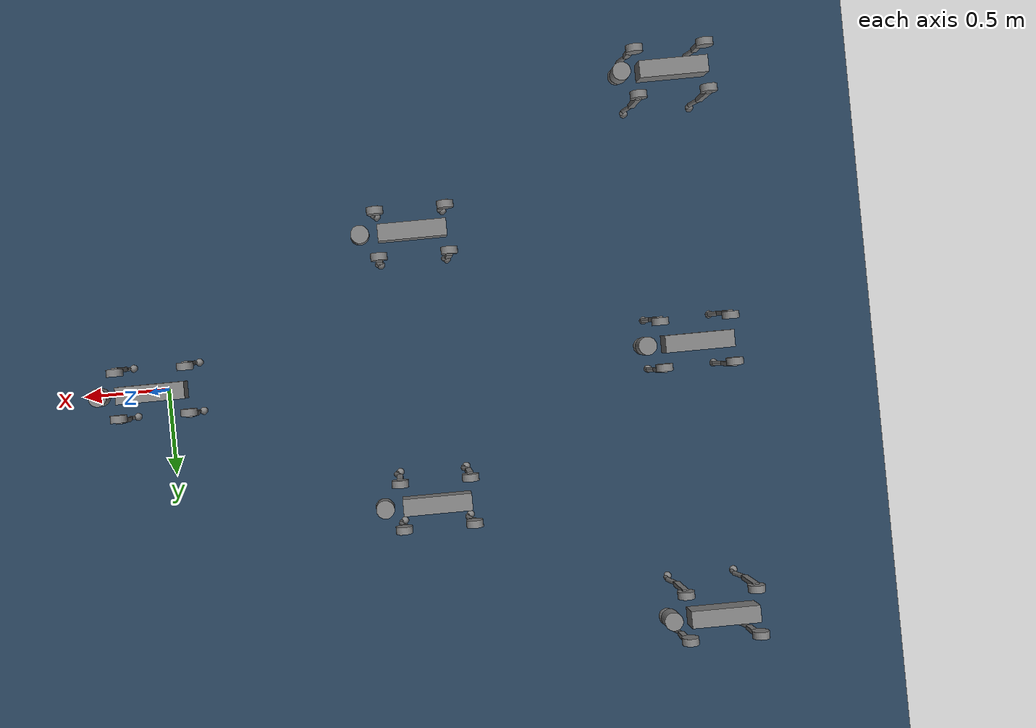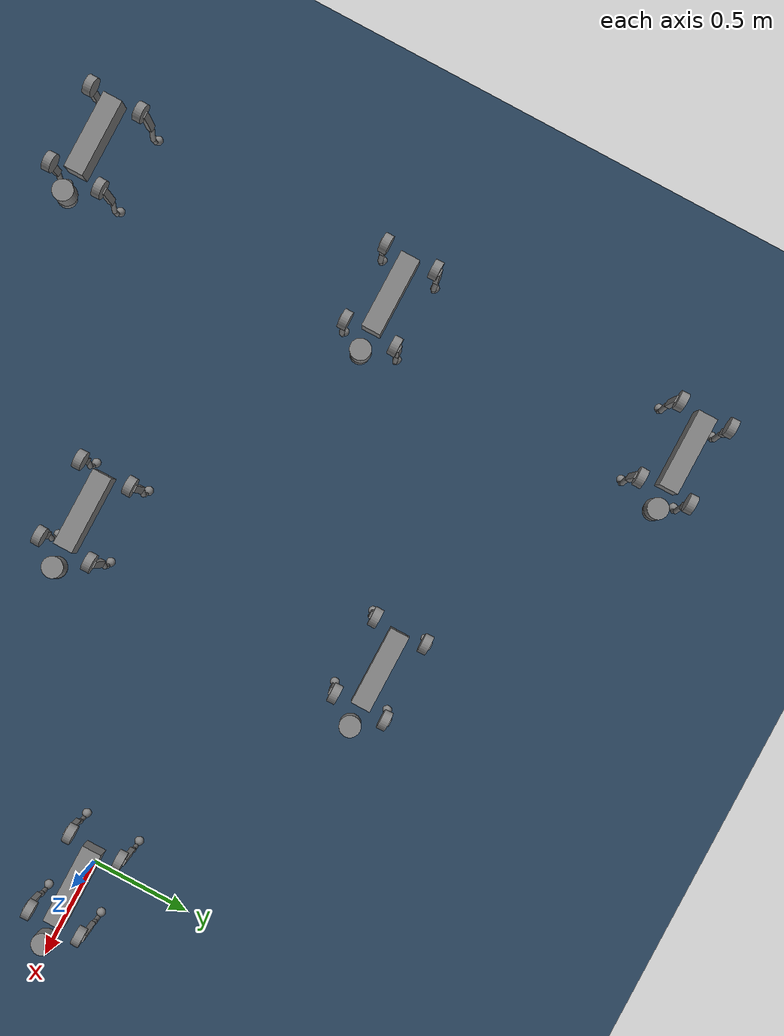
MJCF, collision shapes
<mujoco model="go2 scene">

  <compiler angle="radian" meshdir="assets" autolimits="true" />
  <option cone="elliptic" impratio="100" />
  <default>
    <default class="go2">
      <geom friction="0.4" margin="0.001" condim="1"/>
      <joint axis="0 1 0" damping="0.1" armature="0.01" frictionloss="0.2"/>
      <motor ctrlrange="-23.7 23.7"/>
      <default class="abduction"><joint axis="1 0 0" range="-1.0472 1.0472"/></default>
      <default class="hip">
        <default class="front_hip"><joint range="-1.5708 3.4907"/></default>
        <default class="back_hip"><joint range="-0.5236 4.5379"/></default>
      </default>
      <default class="knee"><joint range="-2.7227 -0.83776"/><motor ctrlrange="-45.43 45.43"/></default>
      <default class="visual"><geom type="mesh" contype="0" conaffinity="0" group="2"/></default>
      <default class="collision"><geom group="3"/>
        <default class="foot"><geom size="0.022" pos="-0.002 0 -0.213" priority="1" condim="6" friction="0.4 0.02 0.01"/></default>
      </default>
    </default>
  </default>

  <asset>
    <material name="metal" rgba=".9 .95 .95 1" />
    <material name="black" rgba="0 0 0 1" />
    <material name="white" rgba="1 1 1 1" />
    <material name="gray" rgba="0.671705 0.692426 0.774270 1" />

    <material name="mat_leader"   rgba="0.9 0.1 0.1 1.0"   shininess="0.8" reflectance="0.3"/>
    <material name="mat_obstacle" rgba="0.2 0.3 0.4 1.0"      shininess="0.1"/>

    <mesh file="base_0.obj" /><mesh file="base_1.obj" /><mesh file="base_2.obj" /><mesh file="base_3.obj" /><mesh file="base_4.obj" />
    <mesh file="hip_0.obj" /><mesh file="hip_1.obj" />
    <mesh file="thigh_0.obj" /><mesh file="thigh_1.obj" /><mesh file="thigh_mirror_0.obj" /><mesh file="thigh_mirror_1.obj" />
    <mesh file="calf_0.obj" /><mesh file="calf_1.obj" /><mesh file="calf_mirror_0.obj" /><mesh file="calf_mirror_1.obj" />
    <mesh file="foot.obj" />
    <texture type="skybox" builtin="gradient" rgb1="0.3 0.5 0.7" rgb2="0 0 0" width="512" height="3072"/>
    <texture type="2d" name="groundplane" builtin="checker" rgb1="0.2 0.3 0.4" rgb2="0.1 0.2 0.3" width="300" height="300"/>
    <material name="groundplane" texture="groundplane" texrepeat="5 5" reflectance="0.2"/>
  </asset>

  <statistic center="0 0 0.1" extent="0.8"/>
  <visual>
    <headlight diffuse="0.6 0.6 0.6" ambient="0.3 0.3 0.3" specular="0 0 0"/>
    <global azimuth="-130" elevation="-20"/>
  </visual>

  <worldbody>
    <light pos="0 0 1.5" dir="0 0 -1" directional="true"/>
    <geom name="floor" size="0 0 0.05" type="plane" material="groundplane"/>

    <body name="go2_0" pos="-3.0000 1.5000 0.4450" euler="0 0 0.0000" childclass="go2">
      <freejoint name="root_0"/>
      <inertial pos="0.021112 0 -0.005366" quat="-0.000543471 0.713435 -0.00173769 0.700719" mass="6.921" diaginertia="0.107027 0.0980771 0.0244531" />

      <geom mesh="base_0" material="black" class="visual" />
      <geom mesh="base_1" material="black" class="visual" />
      <geom mesh="base_2" material="black" class="visual" />
      <geom mesh="base_3" material="white" class="visual" />
      <geom mesh="base_4" material="gray" class="visual" />
      <geom size="0.1881 0.04675 0.057" type="box" class="collision" />
      <geom size="0.05 0.045" pos="0.285 0 0.01" type="cylinder" class="collision" />
      <geom size="0.047" pos="0.293 0 -0.06" class="collision" />
      <site name="imu_0" pos="-0.02557 0 0.04232" />

      <body name="FL_hip_0" pos="0.1934 0.0465 0">
        <joint name="FL_hip_joint_0" class="abduction" />
        <geom mesh="hip_0" material="metal" class="visual" />
        <geom mesh="hip_1" material="gray" class="visual" />
        <geom size="0.046 0.02" pos="0 0.08 0" quat="1 1 0 0" type="cylinder" class="collision" />
        <body name="FL_thigh_0" pos="0 0.0955 0">
          <joint name="FL_thigh_joint_0" class="front_hip" />
          <geom mesh="thigh_0" material="metal" class="visual" />
          <geom mesh="thigh_1" material="gray" class="visual" />
          <geom size="0.1065 0.01225 0.017" pos="0 0 -0.1065" quat="0.707107 0 0.707107 0" type="box" class="collision" />
          <body name="FL_calf_0" pos="0 0 -0.213">
            <joint name="FL_calf_joint_0" class="knee" />
            <geom mesh="calf_0" material="gray" class="visual" />
            <geom mesh="calf_1" material="black" class="visual" />
            <geom size="0.012 0.06" pos="0.008 0 -0.06" quat="0.994493 0 -0.104807 0" type="cylinder" class="collision" />
            <geom size="0.011 0.0325" pos="0.02 0 -0.148" quat="0.999688 0 0.0249974 0" type="cylinder" class="collision" />
            <geom pos="0 0 -0.213" mesh="foot" class="visual" material="black" />
            <geom name="FL_0" class="foot" />
          </body>
        </body>
      </body>

      <body name="FR_hip_0" pos="0.1934 -0.0465 0">
        <joint name="FR_hip_joint_0" class="abduction" />
        <geom mesh="hip_0" material="metal" class="visual" quat="4.63268e-05 1 0 0" />
        <geom mesh="hip_1" material="gray" class="visual" quat="4.63268e-05 1 0 0" />
        <geom size="0.046 0.02" pos="0 -0.08 0" quat="0.707107 0.707107 0 0" type="cylinder" class="collision" />
        <body name="FR_thigh_0" pos="0 -0.0955 0">
          <joint name="FR_thigh_joint_0" class="front_hip" />
          <geom mesh="thigh_mirror_0" material="metal" class="visual" />
          <geom mesh="thigh_mirror_1" material="gray" class="visual" />
          <geom size="0.1065 0.01225 0.017" pos="0 0 -0.1065" quat="0.707107 0 0.707107 0" type="box" class="collision" />
          <body name="FR_calf_0" pos="0 0 -0.213">
            <joint name="FR_calf_joint_0" class="knee" />
            <geom mesh="calf_mirror_0" material="gray" class="visual" />
            <geom mesh="calf_mirror_1" material="black" class="visual" />
            <geom size="0.013 0.06" pos="0.01 0 -0.06" quat="0.995004 0 -0.0998334 0" type="cylinder" class="collision" />
            <geom size="0.011 0.0325" pos="0.02 0 -0.148" quat="0.999688 0 0.0249974 0" type="cylinder" class="collision" />
            <geom pos="0 0 -0.213" mesh="foot" class="visual" material="black" />
            <geom name="FR_0" class="foot" />
          </body>
        </body>
      </body>

      <body name="RL_hip_0" pos="-0.1934 0.0465 0">
        <joint name="RL_hip_joint_0" class="abduction" />
        <geom mesh="hip_0" material="metal" class="visual" quat="4.63268e-05 0 1 0" />
        <geom mesh="hip_1" material="gray" class="visual" quat="4.63268e-05 0 1 0" />
        <geom size="0.046 0.02" pos="0 0.08 0" quat="0.707107 0.707107 0 0" type="cylinder" class="collision" />
        <body name="RL_thigh_0" pos="0 0.0955 0">
          <joint name="RL_thigh_joint_0" class="back_hip" />
          <geom mesh="thigh_0" material="metal" class="visual" />
          <geom mesh="thigh_1" material="gray" class="visual" />
          <geom size="0.1065 0.01225 0.017" pos="0 0 -0.1065" quat="0.707107 0 0.707107 0" type="box" class="collision" />
          <body name="RL_calf_0" pos="0 0 -0.213">
            <joint name="RL_calf_joint_0" class="knee" />
            <geom mesh="calf_0" material="gray" class="visual" />
            <geom mesh="calf_1" material="black" class="visual" />
            <geom size="0.013 0.06" pos="0.01 0 -0.06" quat="0.995004 0 -0.0998334 0" type="cylinder" class="collision" />
            <geom size="0.011 0.0325" pos="0.02 0 -0.148" quat="0.999688 0 0.0249974 0" type="cylinder" class="collision" />
            <geom pos="0 0 -0.213" mesh="foot" class="visual" material="black" />
            <geom name="RL_0" class="foot" />
          </body>
        </body>
      </body>

      <body name="RR_hip_0" pos="-0.1934 -0.0465 0">
        <joint name="RR_hip_joint_0" class="abduction" />
        <geom mesh="hip_0" material="metal" class="visual" quat="2.14617e-09 4.63268e-05 4.63268e-05 -1" />
        <geom mesh="hip_1" material="gray" class="visual" quat="2.14617e-09 4.63268e-05 4.63268e-05 -1" />
        <geom size="0.046 0.02" pos="0 -0.08 0" quat="0.707107 0.707107 0 0" type="cylinder" class="collision" />
        <body name="RR_thigh_0" pos="0 -0.0955 0">
          <joint name="RR_thigh_joint_0" class="back_hip" />
          <geom mesh="thigh_mirror_0" material="metal" class="visual" />
          <geom mesh="thigh_mirror_1" material="gray" class="visual" />
          <geom size="0.1065 0.01225 0.017" pos="0 0 -0.1065" quat="0.707107 0 0.707107 0" type="box" class="collision" />
          <body name="RR_calf_0" pos="0 0 -0.213">
            <joint name="RR_calf_joint_0" class="knee" />
            <geom mesh="calf_mirror_0" material="gray" class="visual" />
            <geom mesh="calf_mirror_1" material="black" class="visual" />
            <geom size="0.013 0.06" pos="0.01 0 -0.06" quat="0.995004 0 -0.0998334 0" type="cylinder" class="collision" />
            <geom size="0.011 0.0325" pos="0.02 0 -0.148" quat="0.999688 0 0.0249974 0" type="cylinder" class="collision" />
            <geom pos="0 0 -0.213" mesh="foot" class="visual" material="black" />
            <geom name="RR_0" class="foot" />
          </body>
        </body>
      </body>
    </body>

    <body name="go2_1" pos="-3.0000 0.0000 0.4450" euler="0 0 0.0000" childclass="go2">
      <freejoint name="root_1"/>
      <inertial pos="0.021112 0 -0.005366" quat="-0.000543471 0.713435 -0.00173769 0.700719" mass="6.921" diaginertia="0.107027 0.0980771 0.0244531" />

      <geom mesh="base_0" material="black" class="visual" />
      <geom mesh="base_1" material="black" class="visual" />
      <geom mesh="base_2" material="black" class="visual" />
      <geom mesh="base_3" material="white" class="visual" />
      <geom mesh="base_4" material="gray" class="visual" />
      <geom size="0.1881 0.04675 0.057" type="box" class="collision" />
      <geom size="0.05 0.045" pos="0.285 0 0.01" type="cylinder" class="collision" />
      <geom size="0.047" pos="0.293 0 -0.06" class="collision" />
      <site name="imu_1" pos="-0.02557 0 0.04232" />

      <body name="FL_hip_1" pos="0.1934 0.0465 0">
        <joint name="FL_hip_joint_1" class="abduction" />
        <geom mesh="hip_0" material="metal" class="visual" />
        <geom mesh="hip_1" material="gray" class="visual" />
        <geom size="0.046 0.02" pos="0 0.08 0" quat="1 1 0 0" type="cylinder" class="collision" />
        <body name="FL_thigh_1" pos="0 0.0955 0">
          <joint name="FL_thigh_joint_1" class="front_hip" />
          <geom mesh="thigh_0" material="metal" class="visual" />
          <geom mesh="thigh_1" material="gray" class="visual" />
          <geom size="0.1065 0.01225 0.017" pos="0 0 -0.1065" quat="0.707107 0 0.707107 0" type="box" class="collision" />
          <body name="FL_calf_1" pos="0 0 -0.213">
            <joint name="FL_calf_joint_1" class="knee" />
            <geom mesh="calf_0" material="gray" class="visual" />
            <geom mesh="calf_1" material="black" class="visual" />
            <geom size="0.012 0.06" pos="0.008 0 -0.06" quat="0.994493 0 -0.104807 0" type="cylinder" class="collision" />
            <geom size="0.011 0.0325" pos="0.02 0 -0.148" quat="0.999688 0 0.0249974 0" type="cylinder" class="collision" />
            <geom pos="0 0 -0.213" mesh="foot" class="visual" material="black" />
            <geom name="FL_1" class="foot" />
          </body>
        </body>
      </body>

      <body name="FR_hip_1" pos="0.1934 -0.0465 0">
        <joint name="FR_hip_joint_1" class="abduction" />
        <geom mesh="hip_0" material="metal" class="visual" quat="4.63268e-05 1 0 0" />
        <geom mesh="hip_1" material="gray" class="visual" quat="4.63268e-05 1 0 0" />
        <geom size="0.046 0.02" pos="0 -0.08 0" quat="0.707107 0.707107 0 0" type="cylinder" class="collision" />
        <body name="FR_thigh_1" pos="0 -0.0955 0">
          <joint name="FR_thigh_joint_1" class="front_hip" />
          <geom mesh="thigh_mirror_0" material="metal" class="visual" />
          <geom mesh="thigh_mirror_1" material="gray" class="visual" />
          <geom size="0.1065 0.01225 0.017" pos="0 0 -0.1065" quat="0.707107 0 0.707107 0" type="box" class="collision" />
          <body name="FR_calf_1" pos="0 0 -0.213">
            <joint name="FR_calf_joint_1" class="knee" />
            <geom mesh="calf_mirror_0" material="gray" class="visual" />
            <geom mesh="calf_mirror_1" material="black" class="visual" />
            <geom size="0.013 0.06" pos="0.01 0 -0.06" quat="0.995004 0 -0.0998334 0" type="cylinder" class="collision" />
            <geom size="0.011 0.0325" pos="0.02 0 -0.148" quat="0.999688 0 0.0249974 0" type="cylinder" class="collision" />
            <geom pos="0 0 -0.213" mesh="foot" class="visual" material="black" />
            <geom name="FR_1" class="foot" />
          </body>
        </body>
      </body>

      <body name="RL_hip_1" pos="-0.1934 0.0465 0">
        <joint name="RL_hip_joint_1" class="abduction" />
        <geom mesh="hip_0" material="metal" class="visual" quat="4.63268e-05 0 1 0" />
        <geom mesh="hip_1" material="gray" class="visual" quat="4.63268e-05 0 1 0" />
        <geom size="0.046 0.02" pos="0 0.08 0" quat="0.707107 0.707107 0 0" type="cylinder" class="collision" />
        <body name="RL_thigh_1" pos="0 0.0955 0">
          <joint name="RL_thigh_joint_1" class="back_hip" />
          <geom mesh="thigh_0" material="metal" class="visual" />
          <geom mesh="thigh_1" material="gray" class="visual" />
          <geom size="0.1065 0.01225 0.017" pos="0 0 -0.1065" quat="0.707107 0 0.707107 0" type="box" class="collision" />
          <body name="RL_calf_1" pos="0 0 -0.213">
            <joint name="RL_calf_joint_1" class="knee" />
            <geom mesh="calf_0" material="gray" class="visual" />
            <geom mesh="calf_1" material="black" class="visual" />
            <geom size="0.013 0.06" pos="0.01 0 -0.06" quat="0.995004 0 -0.0998334 0" type="cylinder" class="collision" />
            <geom size="0.011 0.0325" pos="0.02 0 -0.148" quat="0.999688 0 0.0249974 0" type="cylinder" class="collision" />
            <geom pos="0 0 -0.213" mesh="foot" class="visual" material="black" />
            <geom name="RL_1" class="foot" />
          </body>
        </body>
      </body>

      <body name="RR_hip_1" pos="-0.1934 -0.0465 0">
        <joint name="RR_hip_joint_1" class="abduction" />
        <geom mesh="hip_0" material="metal" class="visual" quat="2.14617e-09 4.63268e-05 4.63268e-05 -1" />
        <geom mesh="hip_1" material="gray" class="visual" quat="2.14617e-09 4.63268e-05 4.63268e-05 -1" />
        <geom size="0.046 0.02" pos="0 -0.08 0" quat="0.707107 0.707107 0 0" type="cylinder" class="collision" />
        <body name="RR_thigh_1" pos="0 -0.0955 0">
          <joint name="RR_thigh_joint_1" class="back_hip" />
          <geom mesh="thigh_mirror_0" material="metal" class="visual" />
          <geom mesh="thigh_mirror_1" material="gray" class="visual" />
          <geom size="0.1065 0.01225 0.017" pos="0 0 -0.1065" quat="0.707107 0 0.707107 0" type="box" class="collision" />
          <body name="RR_calf_1" pos="0 0 -0.213">
            <joint name="RR_calf_joint_1" class="knee" />
            <geom mesh="calf_mirror_0" material="gray" class="visual" />
            <geom mesh="calf_mirror_1" material="black" class="visual" />
            <geom size="0.013 0.06" pos="0.01 0 -0.06" quat="0.995004 0 -0.0998334 0" type="cylinder" class="collision" />
            <geom size="0.011 0.0325" pos="0.02 0 -0.148" quat="0.999688 0 0.0249974 0" type="cylinder" class="collision" />
            <geom pos="0 0 -0.213" mesh="foot" class="visual" material="black" />
            <geom name="RR_1" class="foot" />
          </body>
        </body>
      </body>
    </body>

    <body name="go2_2" pos="-3.0000 -1.5000 0.4450" euler="0 0 0.0000" childclass="go2">
      <freejoint name="root_2"/>
      <inertial pos="0.021112 0 -0.005366" quat="-0.000543471 0.713435 -0.00173769 0.700719" mass="6.921" diaginertia="0.107027 0.0980771 0.0244531" />

      <geom mesh="base_0" material="black" class="visual" />
      <geom mesh="base_1" material="black" class="visual" />
      <geom mesh="base_2" material="black" class="visual" />
      <geom mesh="base_3" material="white" class="visual" />
      <geom mesh="base_4" material="gray" class="visual" />
      <geom size="0.1881 0.04675 0.057" type="box" class="collision" />
      <geom size="0.05 0.045" pos="0.285 0 0.01" type="cylinder" class="collision" />
      <geom size="0.047" pos="0.293 0 -0.06" class="collision" />
      <site name="imu_2" pos="-0.02557 0 0.04232" />

      <body name="FL_hip_2" pos="0.1934 0.0465 0">
        <joint name="FL_hip_joint_2" class="abduction" />
        <geom mesh="hip_0" material="metal" class="visual" />
        <geom mesh="hip_1" material="gray" class="visual" />
        <geom size="0.046 0.02" pos="0 0.08 0" quat="1 1 0 0" type="cylinder" class="collision" />
        <body name="FL_thigh_2" pos="0 0.0955 0">
          <joint name="FL_thigh_joint_2" class="front_hip" />
          <geom mesh="thigh_0" material="metal" class="visual" />
          <geom mesh="thigh_1" material="gray" class="visual" />
          <geom size="0.1065 0.01225 0.017" pos="0 0 -0.1065" quat="0.707107 0 0.707107 0" type="box" class="collision" />
          <body name="FL_calf_2" pos="0 0 -0.213">
            <joint name="FL_calf_joint_2" class="knee" />
            <geom mesh="calf_0" material="gray" class="visual" />
            <geom mesh="calf_1" material="black" class="visual" />
            <geom size="0.012 0.06" pos="0.008 0 -0.06" quat="0.994493 0 -0.104807 0" type="cylinder" class="collision" />
            <geom size="0.011 0.0325" pos="0.02 0 -0.148" quat="0.999688 0 0.0249974 0" type="cylinder" class="collision" />
            <geom pos="0 0 -0.213" mesh="foot" class="visual" material="black" />
            <geom name="FL_2" class="foot" />
          </body>
        </body>
      </body>

      <body name="FR_hip_2" pos="0.1934 -0.0465 0">
        <joint name="FR_hip_joint_2" class="abduction" />
        <geom mesh="hip_0" material="metal" class="visual" quat="4.63268e-05 1 0 0" />
        <geom mesh="hip_1" material="gray" class="visual" quat="4.63268e-05 1 0 0" />
        <geom size="0.046 0.02" pos="0 -0.08 0" quat="0.707107 0.707107 0 0" type="cylinder" class="collision" />
        <body name="FR_thigh_2" pos="0 -0.0955 0">
          <joint name="FR_thigh_joint_2" class="front_hip" />
          <geom mesh="thigh_mirror_0" material="metal" class="visual" />
          <geom mesh="thigh_mirror_1" material="gray" class="visual" />
          <geom size="0.1065 0.01225 0.017" pos="0 0 -0.1065" quat="0.707107 0 0.707107 0" type="box" class="collision" />
          <body name="FR_calf_2" pos="0 0 -0.213">
            <joint name="FR_calf_joint_2" class="knee" />
            <geom mesh="calf_mirror_0" material="gray" class="visual" />
            <geom mesh="calf_mirror_1" material="black" class="visual" />
            <geom size="0.013 0.06" pos="0.01 0 -0.06" quat="0.995004 0 -0.0998334 0" type="cylinder" class="collision" />
            <geom size="0.011 0.0325" pos="0.02 0 -0.148" quat="0.999688 0 0.0249974 0" type="cylinder" class="collision" />
            <geom pos="0 0 -0.213" mesh="foot" class="visual" material="black" />
            <geom name="FR_2" class="foot" />
          </body>
        </body>
      </body>

      <body name="RL_hip_2" pos="-0.1934 0.0465 0">
        <joint name="RL_hip_joint_2" class="abduction" />
        <geom mesh="hip_0" material="metal" class="visual" quat="4.63268e-05 0 1 0" />
        <geom mesh="hip_1" material="gray" class="visual" quat="4.63268e-05 0 1 0" />
        <geom size="0.046 0.02" pos="0 0.08 0" quat="0.707107 0.707107 0 0" type="cylinder" class="collision" />
        <body name="RL_thigh_2" pos="0 0.0955 0">
          <joint name="RL_thigh_joint_2" class="back_hip" />
          <geom mesh="thigh_0" material="metal" class="visual" />
          <geom mesh="thigh_1" material="gray" class="visual" />
          <geom size="0.1065 0.01225 0.017" pos="0 0 -0.1065" quat="0.707107 0 0.707107 0" type="box" class="collision" />
          <body name="RL_calf_2" pos="0 0 -0.213">
            <joint name="RL_calf_joint_2" class="knee" />
            <geom mesh="calf_0" material="gray" class="visual" />
            <geom mesh="calf_1" material="black" class="visual" />
            <geom size="0.013 0.06" pos="0.01 0 -0.06" quat="0.995004 0 -0.0998334 0" type="cylinder" class="collision" />
            <geom size="0.011 0.0325" pos="0.02 0 -0.148" quat="0.999688 0 0.0249974 0" type="cylinder" class="collision" />
            <geom pos="0 0 -0.213" mesh="foot" class="visual" material="black" />
            <geom name="RL_2" class="foot" />
          </body>
        </body>
      </body>

      <body name="RR_hip_2" pos="-0.1934 -0.0465 0">
        <joint name="RR_hip_joint_2" class="abduction" />
        <geom mesh="hip_0" material="metal" class="visual" quat="2.14617e-09 4.63268e-05 4.63268e-05 -1" />
        <geom mesh="hip_1" material="gray" class="visual" quat="2.14617e-09 4.63268e-05 4.63268e-05 -1" />
        <geom size="0.046 0.02" pos="0 -0.08 0" quat="0.707107 0.707107 0 0" type="cylinder" class="collision" />
        <body name="RR_thigh_2" pos="0 -0.0955 0">
          <joint name="RR_thigh_joint_2" class="back_hip" />
          <geom mesh="thigh_mirror_0" material="metal" class="visual" />
          <geom mesh="thigh_mirror_1" material="gray" class="visual" />
          <geom size="0.1065 0.01225 0.017" pos="0 0 -0.1065" quat="0.707107 0 0.707107 0" type="box" class="collision" />
          <body name="RR_calf_2" pos="0 0 -0.213">
            <joint name="RR_calf_joint_2" class="knee" />
            <geom mesh="calf_mirror_0" material="gray" class="visual" />
            <geom mesh="calf_mirror_1" material="black" class="visual" />
            <geom size="0.013 0.06" pos="0.01 0 -0.06" quat="0.995004 0 -0.0998334 0" type="cylinder" class="collision" />
            <geom size="0.011 0.0325" pos="0.02 0 -0.148" quat="0.999688 0 0.0249974 0" type="cylinder" class="collision" />
            <geom pos="0 0 -0.213" mesh="foot" class="visual" material="black" />
            <geom name="RR_2" class="foot" />
          </body>
        </body>
      </body>
    </body>

    <body name="go2_3" pos="-1.5000 0.7500 0.4450" euler="0 0 0.0000" childclass="go2">
      <freejoint name="root_3"/>
      <inertial pos="0.021112 0 -0.005366" quat="-0.000543471 0.713435 -0.00173769 0.700719" mass="6.921" diaginertia="0.107027 0.0980771 0.0244531" />

      <geom mesh="base_0" material="black" class="visual" />
      <geom mesh="base_1" material="black" class="visual" />
      <geom mesh="base_2" material="black" class="visual" />
      <geom mesh="base_3" material="white" class="visual" />
      <geom mesh="base_4" material="gray" class="visual" />
      <geom size="0.1881 0.04675 0.057" type="box" class="collision" />
      <geom size="0.05 0.045" pos="0.285 0 0.01" type="cylinder" class="collision" />
      <geom size="0.047" pos="0.293 0 -0.06" class="collision" />
      <site name="imu_3" pos="-0.02557 0 0.04232" />

      <body name="FL_hip_3" pos="0.1934 0.0465 0">
        <joint name="FL_hip_joint_3" class="abduction" />
        <geom mesh="hip_0" material="metal" class="visual" />
        <geom mesh="hip_1" material="gray" class="visual" />
        <geom size="0.046 0.02" pos="0 0.08 0" quat="1 1 0 0" type="cylinder" class="collision" />
        <body name="FL_thigh_3" pos="0 0.0955 0">
          <joint name="FL_thigh_joint_3" class="front_hip" />
          <geom mesh="thigh_0" material="metal" class="visual" />
          <geom mesh="thigh_1" material="gray" class="visual" />
          <geom size="0.1065 0.01225 0.017" pos="0 0 -0.1065" quat="0.707107 0 0.707107 0" type="box" class="collision" />
          <body name="FL_calf_3" pos="0 0 -0.213">
            <joint name="FL_calf_joint_3" class="knee" />
            <geom mesh="calf_0" material="gray" class="visual" />
            <geom mesh="calf_1" material="black" class="visual" />
            <geom size="0.012 0.06" pos="0.008 0 -0.06" quat="0.994493 0 -0.104807 0" type="cylinder" class="collision" />
            <geom size="0.011 0.0325" pos="0.02 0 -0.148" quat="0.999688 0 0.0249974 0" type="cylinder" class="collision" />
            <geom pos="0 0 -0.213" mesh="foot" class="visual" material="black" />
            <geom name="FL_3" class="foot" />
          </body>
        </body>
      </body>

      <body name="FR_hip_3" pos="0.1934 -0.0465 0">
        <joint name="FR_hip_joint_3" class="abduction" />
        <geom mesh="hip_0" material="metal" class="visual" quat="4.63268e-05 1 0 0" />
        <geom mesh="hip_1" material="gray" class="visual" quat="4.63268e-05 1 0 0" />
        <geom size="0.046 0.02" pos="0 -0.08 0" quat="0.707107 0.707107 0 0" type="cylinder" class="collision" />
        <body name="FR_thigh_3" pos="0 -0.0955 0">
          <joint name="FR_thigh_joint_3" class="front_hip" />
          <geom mesh="thigh_mirror_0" material="metal" class="visual" />
          <geom mesh="thigh_mirror_1" material="gray" class="visual" />
          <geom size="0.1065 0.01225 0.017" pos="0 0 -0.1065" quat="0.707107 0 0.707107 0" type="box" class="collision" />
          <body name="FR_calf_3" pos="0 0 -0.213">
            <joint name="FR_calf_joint_3" class="knee" />
            <geom mesh="calf_mirror_0" material="gray" class="visual" />
            <geom mesh="calf_mirror_1" material="black" class="visual" />
            <geom size="0.013 0.06" pos="0.01 0 -0.06" quat="0.995004 0 -0.0998334 0" type="cylinder" class="collision" />
            <geom size="0.011 0.0325" pos="0.02 0 -0.148" quat="0.999688 0 0.0249974 0" type="cylinder" class="collision" />
            <geom pos="0 0 -0.213" mesh="foot" class="visual" material="black" />
            <geom name="FR_3" class="foot" />
          </body>
        </body>
      </body>

      <body name="RL_hip_3" pos="-0.1934 0.0465 0">
        <joint name="RL_hip_joint_3" class="abduction" />
        <geom mesh="hip_0" material="metal" class="visual" quat="4.63268e-05 0 1 0" />
        <geom mesh="hip_1" material="gray" class="visual" quat="4.63268e-05 0 1 0" />
        <geom size="0.046 0.02" pos="0 0.08 0" quat="0.707107 0.707107 0 0" type="cylinder" class="collision" />
        <body name="RL_thigh_3" pos="0 0.0955 0">
          <joint name="RL_thigh_joint_3" class="back_hip" />
          <geom mesh="thigh_0" material="metal" class="visual" />
          <geom mesh="thigh_1" material="gray" class="visual" />
          <geom size="0.1065 0.01225 0.017" pos="0 0 -0.1065" quat="0.707107 0 0.707107 0" type="box" class="collision" />
          <body name="RL_calf_3" pos="0 0 -0.213">
            <joint name="RL_calf_joint_3" class="knee" />
            <geom mesh="calf_0" material="gray" class="visual" />
            <geom mesh="calf_1" material="black" class="visual" />
            <geom size="0.013 0.06" pos="0.01 0 -0.06" quat="0.995004 0 -0.0998334 0" type="cylinder" class="collision" />
            <geom size="0.011 0.0325" pos="0.02 0 -0.148" quat="0.999688 0 0.0249974 0" type="cylinder" class="collision" />
            <geom pos="0 0 -0.213" mesh="foot" class="visual" material="black" />
            <geom name="RL_3" class="foot" />
          </body>
        </body>
      </body>

      <body name="RR_hip_3" pos="-0.1934 -0.0465 0">
        <joint name="RR_hip_joint_3" class="abduction" />
        <geom mesh="hip_0" material="metal" class="visual" quat="2.14617e-09 4.63268e-05 4.63268e-05 -1" />
        <geom mesh="hip_1" material="gray" class="visual" quat="2.14617e-09 4.63268e-05 4.63268e-05 -1" />
        <geom size="0.046 0.02" pos="0 -0.08 0" quat="0.707107 0.707107 0 0" type="cylinder" class="collision" />
        <body name="RR_thigh_3" pos="0 -0.0955 0">
          <joint name="RR_thigh_joint_3" class="back_hip" />
          <geom mesh="thigh_mirror_0" material="metal" class="visual" />
          <geom mesh="thigh_mirror_1" material="gray" class="visual" />
          <geom size="0.1065 0.01225 0.017" pos="0 0 -0.1065" quat="0.707107 0 0.707107 0" type="box" class="collision" />
          <body name="RR_calf_3" pos="0 0 -0.213">
            <joint name="RR_calf_joint_3" class="knee" />
            <geom mesh="calf_mirror_0" material="gray" class="visual" />
            <geom mesh="calf_mirror_1" material="black" class="visual" />
            <geom size="0.013 0.06" pos="0.01 0 -0.06" quat="0.995004 0 -0.0998334 0" type="cylinder" class="collision" />
            <geom size="0.011 0.0325" pos="0.02 0 -0.148" quat="0.999688 0 0.0249974 0" type="cylinder" class="collision" />
            <geom pos="0 0 -0.213" mesh="foot" class="visual" material="black" />
            <geom name="RR_3" class="foot" />
          </body>
        </body>
      </body>
    </body>

    <body name="go2_4" pos="-1.5000 -0.7500 0.4450" euler="0 0 0.0000" childclass="go2">
      <freejoint name="root_4"/>
      <inertial pos="0.021112 0 -0.005366" quat="-0.000543471 0.713435 -0.00173769 0.700719" mass="6.921" diaginertia="0.107027 0.0980771 0.0244531" />

      <geom mesh="base_0" material="black" class="visual" />
      <geom mesh="base_1" material="black" class="visual" />
      <geom mesh="base_2" material="black" class="visual" />
      <geom mesh="base_3" material="white" class="visual" />
      <geom mesh="base_4" material="gray" class="visual" />
      <geom size="0.1881 0.04675 0.057" type="box" class="collision" />
      <geom size="0.05 0.045" pos="0.285 0 0.01" type="cylinder" class="collision" />
      <geom size="0.047" pos="0.293 0 -0.06" class="collision" />
      <site name="imu_4" pos="-0.02557 0 0.04232" />

      <body name="FL_hip_4" pos="0.1934 0.0465 0">
        <joint name="FL_hip_joint_4" class="abduction" />
        <geom mesh="hip_0" material="metal" class="visual" />
        <geom mesh="hip_1" material="gray" class="visual" />
        <geom size="0.046 0.02" pos="0 0.08 0" quat="1 1 0 0" type="cylinder" class="collision" />
        <body name="FL_thigh_4" pos="0 0.0955 0">
          <joint name="FL_thigh_joint_4" class="front_hip" />
          <geom mesh="thigh_0" material="metal" class="visual" />
          <geom mesh="thigh_1" material="gray" class="visual" />
          <geom size="0.1065 0.01225 0.017" pos="0 0 -0.1065" quat="0.707107 0 0.707107 0" type="box" class="collision" />
          <body name="FL_calf_4" pos="0 0 -0.213">
            <joint name="FL_calf_joint_4" class="knee" />
            <geom mesh="calf_0" material="gray" class="visual" />
            <geom mesh="calf_1" material="black" class="visual" />
            <geom size="0.012 0.06" pos="0.008 0 -0.06" quat="0.994493 0 -0.104807 0" type="cylinder" class="collision" />
            <geom size="0.011 0.0325" pos="0.02 0 -0.148" quat="0.999688 0 0.0249974 0" type="cylinder" class="collision" />
            <geom pos="0 0 -0.213" mesh="foot" class="visual" material="black" />
            <geom name="FL_4" class="foot" />
          </body>
        </body>
      </body>

      <body name="FR_hip_4" pos="0.1934 -0.0465 0">
        <joint name="FR_hip_joint_4" class="abduction" />
        <geom mesh="hip_0" material="metal" class="visual" quat="4.63268e-05 1 0 0" />
        <geom mesh="hip_1" material="gray" class="visual" quat="4.63268e-05 1 0 0" />
        <geom size="0.046 0.02" pos="0 -0.08 0" quat="0.707107 0.707107 0 0" type="cylinder" class="collision" />
        <body name="FR_thigh_4" pos="0 -0.0955 0">
          <joint name="FR_thigh_joint_4" class="front_hip" />
          <geom mesh="thigh_mirror_0" material="metal" class="visual" />
          <geom mesh="thigh_mirror_1" material="gray" class="visual" />
          <geom size="0.1065 0.01225 0.017" pos="0 0 -0.1065" quat="0.707107 0 0.707107 0" type="box" class="collision" />
          <body name="FR_calf_4" pos="0 0 -0.213">
            <joint name="FR_calf_joint_4" class="knee" />
            <geom mesh="calf_mirror_0" material="gray" class="visual" />
            <geom mesh="calf_mirror_1" material="black" class="visual" />
            <geom size="0.013 0.06" pos="0.01 0 -0.06" quat="0.995004 0 -0.0998334 0" type="cylinder" class="collision" />
            <geom size="0.011 0.0325" pos="0.02 0 -0.148" quat="0.999688 0 0.0249974 0" type="cylinder" class="collision" />
            <geom pos="0 0 -0.213" mesh="foot" class="visual" material="black" />
            <geom name="FR_4" class="foot" />
          </body>
        </body>
      </body>

      <body name="RL_hip_4" pos="-0.1934 0.0465 0">
        <joint name="RL_hip_joint_4" class="abduction" />
        <geom mesh="hip_0" material="metal" class="visual" quat="4.63268e-05 0 1 0" />
        <geom mesh="hip_1" material="gray" class="visual" quat="4.63268e-05 0 1 0" />
        <geom size="0.046 0.02" pos="0 0.08 0" quat="0.707107 0.707107 0 0" type="cylinder" class="collision" />
        <body name="RL_thigh_4" pos="0 0.0955 0">
          <joint name="RL_thigh_joint_4" class="back_hip" />
          <geom mesh="thigh_0" material="metal" class="visual" />
          <geom mesh="thigh_1" material="gray" class="visual" />
          <geom size="0.1065 0.01225 0.017" pos="0 0 -0.1065" quat="0.707107 0 0.707107 0" type="box" class="collision" />
          <body name="RL_calf_4" pos="0 0 -0.213">
            <joint name="RL_calf_joint_4" class="knee" />
            <geom mesh="calf_0" material="gray" class="visual" />
            <geom mesh="calf_1" material="black" class="visual" />
            <geom size="0.013 0.06" pos="0.01 0 -0.06" quat="0.995004 0 -0.0998334 0" type="cylinder" class="collision" />
            <geom size="0.011 0.0325" pos="0.02 0 -0.148" quat="0.999688 0 0.0249974 0" type="cylinder" class="collision" />
            <geom pos="0 0 -0.213" mesh="foot" class="visual" material="black" />
            <geom name="RL_4" class="foot" />
          </body>
        </body>
      </body>

      <body name="RR_hip_4" pos="-0.1934 -0.0465 0">
        <joint name="RR_hip_joint_4" class="abduction" />
        <geom mesh="hip_0" material="metal" class="visual" quat="2.14617e-09 4.63268e-05 4.63268e-05 -1" />
        <geom mesh="hip_1" material="gray" class="visual" quat="2.14617e-09 4.63268e-05 4.63268e-05 -1" />
        <geom size="0.046 0.02" pos="0 -0.08 0" quat="0.707107 0.707107 0 0" type="cylinder" class="collision" />
        <body name="RR_thigh_4" pos="0 -0.0955 0">
          <joint name="RR_thigh_joint_4" class="back_hip" />
          <geom mesh="thigh_mirror_0" material="metal" class="visual" />
          <geom mesh="thigh_mirror_1" material="gray" class="visual" />
          <geom size="0.1065 0.01225 0.017" pos="0 0 -0.1065" quat="0.707107 0 0.707107 0" type="box" class="collision" />
          <body name="RR_calf_4" pos="0 0 -0.213">
            <joint name="RR_calf_joint_4" class="knee" />
            <geom mesh="calf_mirror_0" material="gray" class="visual" />
            <geom mesh="calf_mirror_1" material="black" class="visual" />
            <geom size="0.013 0.06" pos="0.01 0 -0.06" quat="0.995004 0 -0.0998334 0" type="cylinder" class="collision" />
            <geom size="0.011 0.0325" pos="0.02 0 -0.148" quat="0.999688 0 0.0249974 0" type="cylinder" class="collision" />
            <geom pos="0 0 -0.213" mesh="foot" class="visual" material="black" />
            <geom name="RR_4" class="foot" />
          </body>
        </body>
      </body>
    </body>

    <body name="go2_5" pos="0.0000 0.0000 0.4450" euler="0 0 0.0000" childclass="go2">
      <freejoint name="root_5"/>
      <inertial pos="0.021112 0 -0.005366" quat="-0.000543471 0.713435 -0.00173769 0.700719" mass="6.921" diaginertia="0.107027 0.0980771 0.0244531" />

      <geom mesh="base_0" material="mat_leader" class="visual" />
      <geom mesh="base_1" material="mat_leader" class="visual" />
      <geom mesh="base_2" material="mat_leader" class="visual" />
      <geom mesh="base_3" material="white" class="visual" />
      <geom mesh="base_4" material="gray" class="visual" />
      <geom size="0.1881 0.04675 0.057" type="box" class="collision" />
      <geom size="0.05 0.045" pos="0.285 0 0.01" type="cylinder" class="collision" />
      <geom size="0.047" pos="0.293 0 -0.06" class="collision" />
      <site name="imu_5" pos="-0.02557 0 0.04232" />

      <body name="FL_hip_5" pos="0.1934 0.0465 0">
        <joint name="FL_hip_joint_5" class="abduction" />
        <geom mesh="hip_0" material="metal" class="visual" />
        <geom mesh="hip_1" material="gray" class="visual" />
        <geom size="0.046 0.02" pos="0 0.08 0" quat="1 1 0 0" type="cylinder" class="collision" />
        <body name="FL_thigh_5" pos="0 0.0955 0">
          <joint name="FL_thigh_joint_5" class="front_hip" />
          <geom mesh="thigh_0" material="metal" class="visual" />
          <geom mesh="thigh_1" material="gray" class="visual" />
          <geom size="0.1065 0.01225 0.017" pos="0 0 -0.1065" quat="0.707107 0 0.707107 0" type="box" class="collision" />
          <body name="FL_calf_5" pos="0 0 -0.213">
            <joint name="FL_calf_joint_5" class="knee" />
            <geom mesh="calf_0" material="gray" class="visual" />
            <geom mesh="calf_1" material="mat_leader" class="visual" />
            <geom size="0.012 0.06" pos="0.008 0 -0.06" quat="0.994493 0 -0.104807 0" type="cylinder" class="collision" />
            <geom size="0.011 0.0325" pos="0.02 0 -0.148" quat="0.999688 0 0.0249974 0" type="cylinder" class="collision" />
            <geom pos="0 0 -0.213" mesh="foot" class="visual" material="black" />
            <geom name="FL_5" class="foot" />
          </body>
        </body>
      </body>

      <body name="FR_hip_5" pos="0.1934 -0.0465 0">
        <joint name="FR_hip_joint_5" class="abduction" />
        <geom mesh="hip_0" material="metal" class="visual" quat="4.63268e-05 1 0 0" />
        <geom mesh="hip_1" material="gray" class="visual" quat="4.63268e-05 1 0 0" />
        <geom size="0.046 0.02" pos="0 -0.08 0" quat="0.707107 0.707107 0 0" type="cylinder" class="collision" />
        <body name="FR_thigh_5" pos="0 -0.0955 0">
          <joint name="FR_thigh_joint_5" class="front_hip" />
          <geom mesh="thigh_mirror_0" material="metal" class="visual" />
          <geom mesh="thigh_mirror_1" material="gray" class="visual" />
          <geom size="0.1065 0.01225 0.017" pos="0 0 -0.1065" quat="0.707107 0 0.707107 0" type="box" class="collision" />
          <body name="FR_calf_5" pos="0 0 -0.213">
            <joint name="FR_calf_joint_5" class="knee" />
            <geom mesh="calf_mirror_0" material="gray" class="visual" />
            <geom mesh="calf_mirror_1" material="mat_leader" class="visual" />
            <geom size="0.013 0.06" pos="0.01 0 -0.06" quat="0.995004 0 -0.0998334 0" type="cylinder" class="collision" />
            <geom size="0.011 0.0325" pos="0.02 0 -0.148" quat="0.999688 0 0.0249974 0" type="cylinder" class="collision" />
            <geom pos="0 0 -0.213" mesh="foot" class="visual" material="black" />
            <geom name="FR_5" class="foot" />
          </body>
        </body>
      </body>

      <body name="RL_hip_5" pos="-0.1934 0.0465 0">
        <joint name="RL_hip_joint_5" class="abduction" />
        <geom mesh="hip_0" material="metal" class="visual" quat="4.63268e-05 0 1 0" />
        <geom mesh="hip_1" material="gray" class="visual" quat="4.63268e-05 0 1 0" />
        <geom size="0.046 0.02" pos="0 0.08 0" quat="0.707107 0.707107 0 0" type="cylinder" class="collision" />
        <body name="RL_thigh_5" pos="0 0.0955 0">
          <joint name="RL_thigh_joint_5" class="back_hip" />
          <geom mesh="thigh_0" material="metal" class="visual" />
          <geom mesh="thigh_1" material="gray" class="visual" />
          <geom size="0.1065 0.01225 0.017" pos="0 0 -0.1065" quat="0.707107 0 0.707107 0" type="box" class="collision" />
          <body name="RL_calf_5" pos="0 0 -0.213">
            <joint name="RL_calf_joint_5" class="knee" />
            <geom mesh="calf_0" material="gray" class="visual" />
            <geom mesh="calf_1" material="mat_leader" class="visual" />
            <geom size="0.013 0.06" pos="0.01 0 -0.06" quat="0.995004 0 -0.0998334 0" type="cylinder" class="collision" />
            <geom size="0.011 0.0325" pos="0.02 0 -0.148" quat="0.999688 0 0.0249974 0" type="cylinder" class="collision" />
            <geom pos="0 0 -0.213" mesh="foot" class="visual" material="black" />
            <geom name="RL_5" class="foot" />
          </body>
        </body>
      </body>

      <body name="RR_hip_5" pos="-0.1934 -0.0465 0">
        <joint name="RR_hip_joint_5" class="abduction" />
        <geom mesh="hip_0" material="metal" class="visual" quat="2.14617e-09 4.63268e-05 4.63268e-05 -1" />
        <geom mesh="hip_1" material="gray" class="visual" quat="2.14617e-09 4.63268e-05 4.63268e-05 -1" />
        <geom size="0.046 0.02" pos="0 -0.08 0" quat="0.707107 0.707107 0 0" type="cylinder" class="collision" />
        <body name="RR_thigh_5" pos="0 -0.0955 0">
          <joint name="RR_thigh_joint_5" class="back_hip" />
          <geom mesh="thigh_mirror_0" material="metal" class="visual" />
          <geom mesh="thigh_mirror_1" material="gray" class="visual" />
          <geom size="0.1065 0.01225 0.017" pos="0 0 -0.1065" quat="0.707107 0 0.707107 0" type="box" class="collision" />
          <body name="RR_calf_5" pos="0 0 -0.213">
            <joint name="RR_calf_joint_5" class="knee" />
            <geom mesh="calf_mirror_0" material="gray" class="visual" />
            <geom mesh="calf_mirror_1" material="mat_leader" class="visual" />
            <geom size="0.013 0.06" pos="0.01 0 -0.06" quat="0.995004 0 -0.0998334 0" type="cylinder" class="collision" />
            <geom size="0.011 0.0325" pos="0.02 0 -0.148" quat="0.999688 0 0.0249974 0" type="cylinder" class="collision" />
            <geom pos="0 0 -0.213" mesh="foot" class="visual" material="black" />
            <geom name="RR_5" class="foot" />
          </body>
        </body>
      </body>
    </body>

  </worldbody>

  <actuator>

    <motor class="abduction" name="FR_hip_0" joint="FR_hip_joint_0" />
    <motor class="hip" name="FR_thigh_0" joint="FR_thigh_joint_0" />
    <motor class="knee" name="FR_calf_0" joint="FR_calf_joint_0" />
    <motor class="abduction" name="FL_hip_0" joint="FL_hip_joint_0" />
    <motor class="hip" name="FL_thigh_0" joint="FL_thigh_joint_0" />
    <motor class="knee" name="FL_calf_0" joint="FL_calf_joint_0" />
    <motor class="abduction" name="RR_hip_0" joint="RR_hip_joint_0" />
    <motor class="hip" name="RR_thigh_0" joint="RR_thigh_joint_0" />
    <motor class="knee" name="RR_calf_0" joint="RR_calf_joint_0" />
    <motor class="abduction" name="RL_hip_0" joint="RL_hip_joint_0" />
    <motor class="hip" name="RL_thigh_0" joint="RL_thigh_joint_0" />
    <motor class="knee" name="RL_calf_0" joint="RL_calf_joint_0" />

    <motor class="abduction" name="FR_hip_1" joint="FR_hip_joint_1" />
    <motor class="hip" name="FR_thigh_1" joint="FR_thigh_joint_1" />
    <motor class="knee" name="FR_calf_1" joint="FR_calf_joint_1" />
    <motor class="abduction" name="FL_hip_1" joint="FL_hip_joint_1" />
    <motor class="hip" name="FL_thigh_1" joint="FL_thigh_joint_1" />
    <motor class="knee" name="FL_calf_1" joint="FL_calf_joint_1" />
    <motor class="abduction" name="RR_hip_1" joint="RR_hip_joint_1" />
    <motor class="hip" name="RR_thigh_1" joint="RR_thigh_joint_1" />
    <motor class="knee" name="RR_calf_1" joint="RR_calf_joint_1" />
    <motor class="abduction" name="RL_hip_1" joint="RL_hip_joint_1" />
    <motor class="hip" name="RL_thigh_1" joint="RL_thigh_joint_1" />
    <motor class="knee" name="RL_calf_1" joint="RL_calf_joint_1" />

    <motor class="abduction" name="FR_hip_2" joint="FR_hip_joint_2" />
    <motor class="hip" name="FR_thigh_2" joint="FR_thigh_joint_2" />
    <motor class="knee" name="FR_calf_2" joint="FR_calf_joint_2" />
    <motor class="abduction" name="FL_hip_2" joint="FL_hip_joint_2" />
    <motor class="hip" name="FL_thigh_2" joint="FL_thigh_joint_2" />
    <motor class="knee" name="FL_calf_2" joint="FL_calf_joint_2" />
    <motor class="abduction" name="RR_hip_2" joint="RR_hip_joint_2" />
    <motor class="hip" name="RR_thigh_2" joint="RR_thigh_joint_2" />
    <motor class="knee" name="RR_calf_2" joint="RR_calf_joint_2" />
    <motor class="abduction" name="RL_hip_2" joint="RL_hip_joint_2" />
    <motor class="hip" name="RL_thigh_2" joint="RL_thigh_joint_2" />
    <motor class="knee" name="RL_calf_2" joint="RL_calf_joint_2" />

    <motor class="abduction" name="FR_hip_3" joint="FR_hip_joint_3" />
    <motor class="hip" name="FR_thigh_3" joint="FR_thigh_joint_3" />
    <motor class="knee" name="FR_calf_3" joint="FR_calf_joint_3" />
    <motor class="abduction" name="FL_hip_3" joint="FL_hip_joint_3" />
    <motor class="hip" name="FL_thigh_3" joint="FL_thigh_joint_3" />
    <motor class="knee" name="FL_calf_3" joint="FL_calf_joint_3" />
    <motor class="abduction" name="RR_hip_3" joint="RR_hip_joint_3" />
    <motor class="hip" name="RR_thigh_3" joint="RR_thigh_joint_3" />
    <motor class="knee" name="RR_calf_3" joint="RR_calf_joint_3" />
    <motor class="abduction" name="RL_hip_3" joint="RL_hip_joint_3" />
    <motor class="hip" name="RL_thigh_3" joint="RL_thigh_joint_3" />
    <motor class="knee" name="RL_calf_3" joint="RL_calf_joint_3" />

    <motor class="abduction" name="FR_hip_4" joint="FR_hip_joint_4" />
    <motor class="hip" name="FR_thigh_4" joint="FR_thigh_joint_4" />
    <motor class="knee" name="FR_calf_4" joint="FR_calf_joint_4" />
    <motor class="abduction" name="FL_hip_4" joint="FL_hip_joint_4" />
    <motor class="hip" name="FL_thigh_4" joint="FL_thigh_joint_4" />
    <motor class="knee" name="FL_calf_4" joint="FL_calf_joint_4" />
    <motor class="abduction" name="RR_hip_4" joint="RR_hip_joint_4" />
    <motor class="hip" name="RR_thigh_4" joint="RR_thigh_joint_4" />
    <motor class="knee" name="RR_calf_4" joint="RR_calf_joint_4" />
    <motor class="abduction" name="RL_hip_4" joint="RL_hip_joint_4" />
    <motor class="hip" name="RL_thigh_4" joint="RL_thigh_joint_4" />
    <motor class="knee" name="RL_calf_4" joint="RL_calf_joint_4" />

    <motor class="abduction" name="FR_hip_5" joint="FR_hip_joint_5" />
    <motor class="hip" name="FR_thigh_5" joint="FR_thigh_joint_5" />
    <motor class="knee" name="FR_calf_5" joint="FR_calf_joint_5" />
    <motor class="abduction" name="FL_hip_5" joint="FL_hip_joint_5" />
    <motor class="hip" name="FL_thigh_5" joint="FL_thigh_joint_5" />
    <motor class="knee" name="FL_calf_5" joint="FL_calf_joint_5" />
    <motor class="abduction" name="RR_hip_5" joint="RR_hip_joint_5" />
    <motor class="hip" name="RR_thigh_5" joint="RR_thigh_joint_5" />
    <motor class="knee" name="RR_calf_5" joint="RR_calf_joint_5" />
    <motor class="abduction" name="RL_hip_5" joint="RL_hip_joint_5" />
    <motor class="hip" name="RL_thigh_5" joint="RL_thigh_joint_5" />
    <motor class="knee" name="RL_calf_5" joint="RL_calf_joint_5" />

  </actuator>

  <sensor>

    <framequat name="imu_quat_0" objtype="site" objname="imu_0" />
    <gyro name="imu_gyro_0" site="imu_0" />
    <accelerometer name="imu_acc_0" site="imu_0" />

    <framequat name="imu_quat_1" objtype="site" objname="imu_1" />
    <gyro name="imu_gyro_1" site="imu_1" />
    <accelerometer name="imu_acc_1" site="imu_1" />

    <framequat name="imu_quat_2" objtype="site" objname="imu_2" />
    <gyro name="imu_gyro_2" site="imu_2" />
    <accelerometer name="imu_acc_2" site="imu_2" />

    <framequat name="imu_quat_3" objtype="site" objname="imu_3" />
    <gyro name="imu_gyro_3" site="imu_3" />
    <accelerometer name="imu_acc_3" site="imu_3" />

    <framequat name="imu_quat_4" objtype="site" objname="imu_4" />
    <gyro name="imu_gyro_4" site="imu_4" />
    <accelerometer name="imu_acc_4" site="imu_4" />

    <framequat name="imu_quat_5" objtype="site" objname="imu_5" />
    <gyro name="imu_gyro_5" site="imu_5" />
    <accelerometer name="imu_acc_5" site="imu_5" />

  </sensor>
</mujoco>
